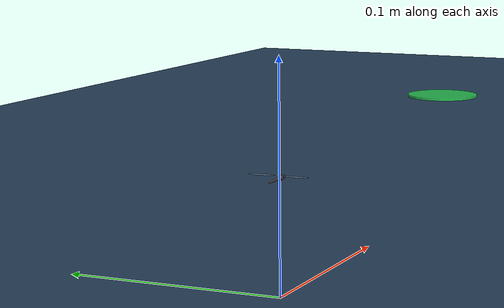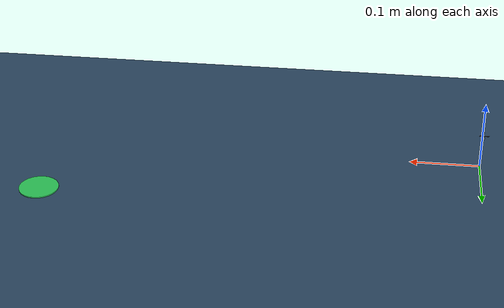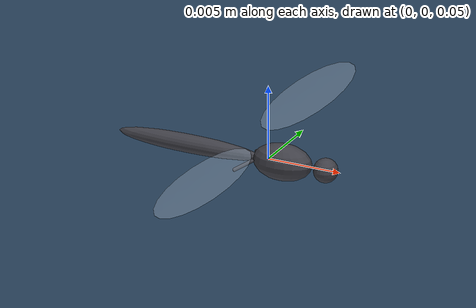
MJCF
<mujoco model="flapping_flyer">

  <option timestep="1e-4" gravity="0 0 -9.81" integrator="implicitfast"/>

  <!-- ===================== VISUALS (menagerie look) ===================== -->
  <visual>
    <headlight diffuse="0.6 0.6 0.6" ambient="0.3 0.3 0.3" specular="0 0 0"/>
    <rgba haze="0.15 0.25 0.35 1"/>
    <global azimuth="120" elevation="-20" offwidth="1280" offheight="960"/>
  </visual>

  <asset>
    <texture type="skybox" builtin="gradient" rgb1="0.3 0.5 0.7" rgb2="0 0 0"
             width="512" height="3072"/>
    <texture type="2d" name="groundplane" builtin="checker" mark="edge"
             rgb1="0.2 0.3 0.4" rgb2="0.1 0.2 0.3" markrgb="0.8 0.8 0.8"
             width="300" height="300"/>
    <material name="groundplane" texture="groundplane" texuniform="true"
              texrepeat="5 5" reflectance="0.2"/>
    <material name="thorax_mat" rgba="0.25 0.25 0.28 1"/>
    <material name="wing_mat"   rgba="0.55 0.62 0.70 0.45"/>
  </asset>

  <default>
    <joint damping="1e-8" armature="0"/>
    <geom density="1200"/>
  </default>

  <worldbody>
    <light pos="0 0 0.3" dir="0 0 -1" directional="true"
           diffuse="0.7 0.7 0.7"/>
    <geom name="floor" type="plane" size="0 0 0.01" material="groundplane"/>
    <geom name="cw0" type="box" pos="0.0000 0.0320 0.0400" size="0.0050 0.0050 0.0400" group="3" rgba="0.62 0.66 0.72 1" contype="0" conaffinity="0"/>
    <geom name="cw1" type="box" pos="0.0070 0.0320 0.0400" size="0.0050 0.0050 0.0400" group="3" rgba="0.62 0.66 0.72 1" contype="0" conaffinity="0"/>
    <geom name="cw2" type="box" pos="0.0140 0.0320 0.0400" size="0.0050 0.0050 0.0400" group="3" rgba="0.62 0.66 0.72 1" contype="0" conaffinity="0"/>
    <geom name="cw3" type="box" pos="0.0210 0.0320 0.0400" size="0.0050 0.0050 0.0400" group="3" rgba="0.62 0.66 0.72 1" contype="0" conaffinity="0"/>
    <geom name="cw4" type="box" pos="0.0280 0.0320 0.0400" size="0.0050 0.0050 0.0400" group="3" rgba="0.62 0.66 0.72 1" contype="0" conaffinity="0"/>
    <geom name="cw5" type="box" pos="0.0350 0.0320 0.0400" size="0.0050 0.0050 0.0400" group="3" rgba="0.62 0.66 0.72 1" contype="0" conaffinity="0"/>
    <geom name="cw6" type="box" pos="0.0420 0.0320 0.0400" size="0.0050 0.0050 0.0400" group="3" rgba="0.62 0.66 0.72 1" contype="0" conaffinity="0"/>
    <geom name="cw7" type="box" pos="0.0490 0.0320 0.0400" size="0.0050 0.0050 0.0400" group="3" rgba="0.62 0.66 0.72 1" contype="0" conaffinity="0"/>
    <geom name="cw8" type="box" pos="0.0560 0.0320 0.0400" size="0.0050 0.0050 0.0400" group="3" rgba="0.62 0.66 0.72 1" contype="0" conaffinity="0"/>
    <geom name="cw9" type="box" pos="0.0630 0.0320 0.0400" size="0.0050 0.0050 0.0400" group="3" rgba="0.62 0.66 0.72 1" contype="0" conaffinity="0"/>
    <geom name="cw10" type="box" pos="0.0700 0.0320 0.0400" size="0.0050 0.0050 0.0400" group="3" rgba="0.62 0.66 0.72 1" contype="0" conaffinity="0"/>
    <geom name="cw11" type="box" pos="0.0770 0.0320 0.0400" size="0.0050 0.0050 0.0400" group="3" rgba="0.62 0.66 0.72 1" contype="0" conaffinity="0"/>
    <geom name="cw12" type="box" pos="0.0840 0.0320 0.0400" size="0.0050 0.0050 0.0400" group="3" rgba="0.62 0.66 0.72 1" contype="0" conaffinity="0"/>
    <geom name="cw13" type="box" pos="0.0910 0.0320 0.0400" size="0.0050 0.0050 0.0400" group="3" rgba="0.62 0.66 0.72 1" contype="0" conaffinity="0"/>
    <geom name="cw14" type="box" pos="0.0980 0.0320 0.0400" size="0.0050 0.0050 0.0400" group="3" rgba="0.62 0.66 0.72 1" contype="0" conaffinity="0"/>
    <geom name="cw15" type="box" pos="0.1050 0.0320 0.0400" size="0.0050 0.0050 0.0400" group="3" rgba="0.62 0.66 0.72 1" contype="0" conaffinity="0"/>
    <geom name="cw16" type="box" pos="0.1120 0.0320 0.0400" size="0.0050 0.0050 0.0400" group="3" rgba="0.62 0.66 0.72 1" contype="0" conaffinity="0"/>
    <geom name="cw17" type="box" pos="0.1190 0.0320 0.0400" size="0.0050 0.0050 0.0400" group="3" rgba="0.62 0.66 0.72 1" contype="0" conaffinity="0"/>
    <geom name="cw18" type="box" pos="0.1260 0.0320 0.0400" size="0.0050 0.0050 0.0400" group="3" rgba="0.62 0.66 0.72 1" contype="0" conaffinity="0"/>
    <geom name="cw19" type="box" pos="0.1330 0.0320 0.0400" size="0.0050 0.0050 0.0400" group="3" rgba="0.62 0.66 0.72 1" contype="0" conaffinity="0"/>
    <geom name="cw20" type="box" pos="0.1330 0.0320 0.0400" size="0.0050 0.0050 0.0400" group="3" rgba="0.62 0.66 0.72 1" contype="0" conaffinity="0"/>
    <geom name="cw21" type="box" pos="0.1330 0.0390 0.0400" size="0.0050 0.0050 0.0400" group="3" rgba="0.62 0.66 0.72 1" contype="0" conaffinity="0"/>
    <geom name="cw22" type="box" pos="0.1330 0.0459 0.0400" size="0.0050 0.0050 0.0400" group="3" rgba="0.62 0.66 0.72 1" contype="0" conaffinity="0"/>
    <geom name="cw23" type="box" pos="0.1330 0.0529 0.0400" size="0.0050 0.0050 0.0400" group="3" rgba="0.62 0.66 0.72 1" contype="0" conaffinity="0"/>
    <geom name="cw24" type="box" pos="0.1330 0.0599 0.0400" size="0.0050 0.0050 0.0400" group="3" rgba="0.62 0.66 0.72 1" contype="0" conaffinity="0"/>
    <geom name="cw25" type="box" pos="0.1330 0.0668 0.0400" size="0.0050 0.0050 0.0400" group="3" rgba="0.62 0.66 0.72 1" contype="0" conaffinity="0"/>
    <geom name="cw26" type="box" pos="0.1330 0.0738 0.0400" size="0.0050 0.0050 0.0400" group="3" rgba="0.62 0.66 0.72 1" contype="0" conaffinity="0"/>
    <geom name="cw27" type="box" pos="0.1330 0.0807 0.0400" size="0.0050 0.0050 0.0400" group="3" rgba="0.62 0.66 0.72 1" contype="0" conaffinity="0"/>
    <geom name="cw28" type="box" pos="0.1330 0.0877 0.0400" size="0.0050 0.0050 0.0400" group="3" rgba="0.62 0.66 0.72 1" contype="0" conaffinity="0"/>
    <geom name="cw29" type="box" pos="0.1330 0.0947 0.0400" size="0.0050 0.0050 0.0400" group="3" rgba="0.62 0.66 0.72 1" contype="0" conaffinity="0"/>
    <geom name="cw30" type="box" pos="0.1330 0.1016 0.0400" size="0.0050 0.0050 0.0400" group="3" rgba="0.62 0.66 0.72 1" contype="0" conaffinity="0"/>
    <geom name="cw31" type="box" pos="0.1330 0.1086 0.0400" size="0.0050 0.0050 0.0400" group="3" rgba="0.62 0.66 0.72 1" contype="0" conaffinity="0"/>
    <geom name="cw32" type="box" pos="0.1330 0.1156 0.0400" size="0.0050 0.0050 0.0400" group="3" rgba="0.62 0.66 0.72 1" contype="0" conaffinity="0"/>
    <geom name="cw33" type="box" pos="0.1330 0.1225 0.0400" size="0.0050 0.0050 0.0400" group="3" rgba="0.62 0.66 0.72 1" contype="0" conaffinity="0"/>
    <geom name="cw34" type="box" pos="0.1330 0.1295 0.0400" size="0.0050 0.0050 0.0400" group="3" rgba="0.62 0.66 0.72 1" contype="0" conaffinity="0"/>
    <geom name="cw35" type="box" pos="0.1330 0.1365 0.0400" size="0.0050 0.0050 0.0400" group="3" rgba="0.62 0.66 0.72 1" contype="0" conaffinity="0"/>
    <geom name="cw36" type="box" pos="0.1330 0.1434 0.0400" size="0.0050 0.0050 0.0400" group="3" rgba="0.62 0.66 0.72 1" contype="0" conaffinity="0"/>
    <geom name="cw37" type="box" pos="0.1330 0.1504 0.0400" size="0.0050 0.0050 0.0400" group="3" rgba="0.62 0.66 0.72 1" contype="0" conaffinity="0"/>
    <geom name="cw38" type="box" pos="0.1330 0.1574 0.0400" size="0.0050 0.0050 0.0400" group="3" rgba="0.62 0.66 0.72 1" contype="0" conaffinity="0"/>
    <geom name="cw39" type="box" pos="0.1330 0.1643 0.0400" size="0.0050 0.0050 0.0400" group="3" rgba="0.62 0.66 0.72 1" contype="0" conaffinity="0"/>
    <geom name="cw40" type="box" pos="0.1330 0.1713 0.0400" size="0.0050 0.0050 0.0400" group="3" rgba="0.62 0.66 0.72 1" contype="0" conaffinity="0"/>
    <geom name="cw41" type="box" pos="0.1330 0.1782 0.0400" size="0.0050 0.0050 0.0400" group="3" rgba="0.62 0.66 0.72 1" contype="0" conaffinity="0"/>
    <geom name="cw42" type="box" pos="0.1330 0.1852 0.0400" size="0.0050 0.0050 0.0400" group="3" rgba="0.62 0.66 0.72 1" contype="0" conaffinity="0"/>
    <geom name="cw43" type="box" pos="0.1330 0.1922 0.0400" size="0.0050 0.0050 0.0400" group="3" rgba="0.62 0.66 0.72 1" contype="0" conaffinity="0"/>
    <geom name="cw44" type="box" pos="0.1330 0.1991 0.0400" size="0.0050 0.0050 0.0400" group="3" rgba="0.62 0.66 0.72 1" contype="0" conaffinity="0"/>
    <geom name="cw45" type="box" pos="0.1330 0.2061 0.0400" size="0.0050 0.0050 0.0400" group="3" rgba="0.62 0.66 0.72 1" contype="0" conaffinity="0"/>
    <geom name="cw46" type="box" pos="0.1330 0.2131 0.0400" size="0.0050 0.0050 0.0400" group="3" rgba="0.62 0.66 0.72 1" contype="0" conaffinity="0"/>
    <geom name="cw47" type="box" pos="0.1330 0.2200 0.0400" size="0.0050 0.0050 0.0400" group="3" rgba="0.62 0.66 0.72 1" contype="0" conaffinity="0"/>
    <geom name="cw48" type="box" pos="0.1330 0.2270 0.0400" size="0.0050 0.0050 0.0400" group="3" rgba="0.62 0.66 0.72 1" contype="0" conaffinity="0"/>
    <geom name="cw49" type="box" pos="0.1330 0.2270 0.0400" size="0.0050 0.0050 0.0400" group="3" rgba="0.62 0.66 0.72 1" contype="0" conaffinity="0"/>
    <geom name="cw50" type="box" pos="0.1398 0.2270 0.0400" size="0.0050 0.0050 0.0400" group="3" rgba="0.62 0.66 0.72 1" contype="0" conaffinity="0"/>
    <geom name="cw51" type="box" pos="0.1466 0.2270 0.0400" size="0.0050 0.0050 0.0400" group="3" rgba="0.62 0.66 0.72 1" contype="0" conaffinity="0"/>
    <geom name="cw52" type="box" pos="0.1535 0.2270 0.0400" size="0.0050 0.0050 0.0400" group="3" rgba="0.62 0.66 0.72 1" contype="0" conaffinity="0"/>
    <geom name="cw53" type="box" pos="0.1603 0.2270 0.0400" size="0.0050 0.0050 0.0400" group="3" rgba="0.62 0.66 0.72 1" contype="0" conaffinity="0"/>
    <geom name="cw54" type="box" pos="0.1671 0.2270 0.0400" size="0.0050 0.0050 0.0400" group="3" rgba="0.62 0.66 0.72 1" contype="0" conaffinity="0"/>
    <geom name="cw55" type="box" pos="0.1739 0.2270 0.0400" size="0.0050 0.0050 0.0400" group="3" rgba="0.62 0.66 0.72 1" contype="0" conaffinity="0"/>
    <geom name="cw56" type="box" pos="0.1807 0.2270 0.0400" size="0.0050 0.0050 0.0400" group="3" rgba="0.62 0.66 0.72 1" contype="0" conaffinity="0"/>
    <geom name="cw57" type="box" pos="0.1876 0.2270 0.0400" size="0.0050 0.0050 0.0400" group="3" rgba="0.62 0.66 0.72 1" contype="0" conaffinity="0"/>
    <geom name="cw58" type="box" pos="0.1944 0.2270 0.0400" size="0.0050 0.0050 0.0400" group="3" rgba="0.62 0.66 0.72 1" contype="0" conaffinity="0"/>
    <geom name="cw59" type="box" pos="0.2012 0.2270 0.0400" size="0.0050 0.0050 0.0400" group="3" rgba="0.62 0.66 0.72 1" contype="0" conaffinity="0"/>
    <geom name="cw60" type="box" pos="0.2080 0.2270 0.0400" size="0.0050 0.0050 0.0400" group="3" rgba="0.62 0.66 0.72 1" contype="0" conaffinity="0"/>
    <geom name="cw61" type="box" pos="0.2149 0.2270 0.0400" size="0.0050 0.0050 0.0400" group="3" rgba="0.62 0.66 0.72 1" contype="0" conaffinity="0"/>
    <geom name="cw62" type="box" pos="0.2217 0.2270 0.0400" size="0.0050 0.0050 0.0400" group="3" rgba="0.62 0.66 0.72 1" contype="0" conaffinity="0"/>
    <geom name="cw63" type="box" pos="0.2285 0.2270 0.0400" size="0.0050 0.0050 0.0400" group="3" rgba="0.62 0.66 0.72 1" contype="0" conaffinity="0"/>
    <geom name="cw64" type="box" pos="0.2353 0.2270 0.0400" size="0.0050 0.0050 0.0400" group="3" rgba="0.62 0.66 0.72 1" contype="0" conaffinity="0"/>
    <geom name="cw65" type="box" pos="0.2421 0.2270 0.0400" size="0.0050 0.0050 0.0400" group="3" rgba="0.62 0.66 0.72 1" contype="0" conaffinity="0"/>
    <geom name="cw66" type="box" pos="0.2490 0.2270 0.0400" size="0.0050 0.0050 0.0400" group="3" rgba="0.62 0.66 0.72 1" contype="0" conaffinity="0"/>
    <geom name="cw67" type="box" pos="0.2558 0.2270 0.0400" size="0.0050 0.0050 0.0400" group="3" rgba="0.62 0.66 0.72 1" contype="0" conaffinity="0"/>
    <geom name="cw68" type="box" pos="0.2626 0.2270 0.0400" size="0.0050 0.0050 0.0400" group="3" rgba="0.62 0.66 0.72 1" contype="0" conaffinity="0"/>
    <geom name="cw69" type="box" pos="0.2694 0.2270 0.0400" size="0.0050 0.0050 0.0400" group="3" rgba="0.62 0.66 0.72 1" contype="0" conaffinity="0"/>
    <geom name="cw70" type="box" pos="0.2762 0.2270 0.0400" size="0.0050 0.0050 0.0400" group="3" rgba="0.62 0.66 0.72 1" contype="0" conaffinity="0"/>
    <geom name="cw71" type="box" pos="0.2831 0.2270 0.0400" size="0.0050 0.0050 0.0400" group="3" rgba="0.62 0.66 0.72 1" contype="0" conaffinity="0"/>
    <geom name="cw72" type="box" pos="0.2899 0.2270 0.0400" size="0.0050 0.0050 0.0400" group="3" rgba="0.62 0.66 0.72 1" contype="0" conaffinity="0"/>
    <geom name="cw73" type="box" pos="0.2967 0.2270 0.0400" size="0.0050 0.0050 0.0400" group="3" rgba="0.62 0.66 0.72 1" contype="0" conaffinity="0"/>
    <geom name="cw74" type="box" pos="0.3035 0.2270 0.0400" size="0.0050 0.0050 0.0400" group="3" rgba="0.62 0.66 0.72 1" contype="0" conaffinity="0"/>
    <geom name="cw75" type="box" pos="0.3103 0.2270 0.0400" size="0.0050 0.0050 0.0400" group="3" rgba="0.62 0.66 0.72 1" contype="0" conaffinity="0"/>
    <geom name="cw76" type="box" pos="0.3172 0.2270 0.0400" size="0.0050 0.0050 0.0400" group="3" rgba="0.62 0.66 0.72 1" contype="0" conaffinity="0"/>
    <geom name="cw77" type="box" pos="0.3240 0.2270 0.0400" size="0.0050 0.0050 0.0400" group="3" rgba="0.62 0.66 0.72 1" contype="0" conaffinity="0"/>
    <geom name="cw78" type="box" pos="0.3308 0.2270 0.0400" size="0.0050 0.0050 0.0400" group="3" rgba="0.62 0.66 0.72 1" contype="0" conaffinity="0"/>
    <geom name="cw79" type="box" pos="0.3376 0.2270 0.0400" size="0.0050 0.0050 0.0400" group="3" rgba="0.62 0.66 0.72 1" contype="0" conaffinity="0"/>
    <geom name="cw80" type="box" pos="0.3445 0.2270 0.0400" size="0.0050 0.0050 0.0400" group="3" rgba="0.62 0.66 0.72 1" contype="0" conaffinity="0"/>
    <geom name="cw81" type="box" pos="0.3513 0.2270 0.0400" size="0.0050 0.0050 0.0400" group="3" rgba="0.62 0.66 0.72 1" contype="0" conaffinity="0"/>
    <geom name="cw82" type="box" pos="0.3513 0.2270 0.0400" size="0.0050 0.0050 0.0400" group="3" rgba="0.62 0.66 0.72 1" contype="0" conaffinity="0"/>
    <geom name="cw83" type="box" pos="0.3572 0.2305 0.0400" size="0.0050 0.0050 0.0400" group="3" rgba="0.62 0.66 0.72 1" contype="0" conaffinity="0"/>
    <geom name="cw84" type="box" pos="0.3630 0.2339 0.0400" size="0.0050 0.0050 0.0400" group="3" rgba="0.62 0.66 0.72 1" contype="0" conaffinity="0"/>
    <geom name="cw85" type="box" pos="0.3689 0.2374 0.0400" size="0.0050 0.0050 0.0400" group="3" rgba="0.62 0.66 0.72 1" contype="0" conaffinity="0"/>
    <geom name="cw86" type="box" pos="0.3748 0.2409 0.0400" size="0.0050 0.0050 0.0400" group="3" rgba="0.62 0.66 0.72 1" contype="0" conaffinity="0"/>
    <geom name="cw87" type="box" pos="0.3807 0.2443 0.0400" size="0.0050 0.0050 0.0400" group="3" rgba="0.62 0.66 0.72 1" contype="0" conaffinity="0"/>
    <geom name="cw88" type="box" pos="0.3866 0.2478 0.0400" size="0.0050 0.0050 0.0400" group="3" rgba="0.62 0.66 0.72 1" contype="0" conaffinity="0"/>
    <geom name="cw89" type="box" pos="0.3925 0.2513 0.0400" size="0.0050 0.0050 0.0400" group="3" rgba="0.62 0.66 0.72 1" contype="0" conaffinity="0"/>
    <geom name="cw90" type="box" pos="0.3983 0.2547 0.0400" size="0.0050 0.0050 0.0400" group="3" rgba="0.62 0.66 0.72 1" contype="0" conaffinity="0"/>
    <geom name="cw91" type="box" pos="0.4042 0.2582 0.0400" size="0.0050 0.0050 0.0400" group="3" rgba="0.62 0.66 0.72 1" contype="0" conaffinity="0"/>
    <geom name="cw92" type="box" pos="0.4101 0.2617 0.0400" size="0.0050 0.0050 0.0400" group="3" rgba="0.62 0.66 0.72 1" contype="0" conaffinity="0"/>
    <geom name="cw93" type="box" pos="0.4160 0.2651 0.0400" size="0.0050 0.0050 0.0400" group="3" rgba="0.62 0.66 0.72 1" contype="0" conaffinity="0"/>
    <geom name="cw94" type="box" pos="0.4219 0.2686 0.0400" size="0.0050 0.0050 0.0400" group="3" rgba="0.62 0.66 0.72 1" contype="0" conaffinity="0"/>
    <geom name="cw95" type="box" pos="0.4278 0.2721 0.0400" size="0.0050 0.0050 0.0400" group="3" rgba="0.62 0.66 0.72 1" contype="0" conaffinity="0"/>
    <geom name="cw96" type="box" pos="0.4337 0.2755 0.0400" size="0.0050 0.0050 0.0400" group="3" rgba="0.62 0.66 0.72 1" contype="0" conaffinity="0"/>
    <geom name="cw97" type="box" pos="0.4395 0.2790 0.0400" size="0.0050 0.0050 0.0400" group="3" rgba="0.62 0.66 0.72 1" contype="0" conaffinity="0"/>
    <geom name="cw98" type="box" pos="0.4454 0.2825 0.0400" size="0.0050 0.0050 0.0400" group="3" rgba="0.62 0.66 0.72 1" contype="0" conaffinity="0"/>
    <geom name="cw99" type="box" pos="0.4513 0.2860 0.0400" size="0.0050 0.0050 0.0400" group="3" rgba="0.62 0.66 0.72 1" contype="0" conaffinity="0"/>
    <geom name="cw100" type="box" pos="0.4572 0.2894 0.0400" size="0.0050 0.0050 0.0400" group="3" rgba="0.62 0.66 0.72 1" contype="0" conaffinity="0"/>
    <geom name="cw101" type="box" pos="0.4631 0.2929 0.0400" size="0.0050 0.0050 0.0400" group="3" rgba="0.62 0.66 0.72 1" contype="0" conaffinity="0"/>
    <geom name="cw102" type="box" pos="0.4690 0.2964 0.0400" size="0.0050 0.0050 0.0400" group="3" rgba="0.62 0.66 0.72 1" contype="0" conaffinity="0"/>
    <geom name="cw103" type="box" pos="0.4748 0.2998 0.0400" size="0.0050 0.0050 0.0400" group="3" rgba="0.62 0.66 0.72 1" contype="0" conaffinity="0"/>
    <geom name="cw104" type="box" pos="0.4807 0.3033 0.0400" size="0.0050 0.0050 0.0400" group="3" rgba="0.62 0.66 0.72 1" contype="0" conaffinity="0"/>
    <geom name="cw105" type="box" pos="0.4866 0.3068 0.0400" size="0.0050 0.0050 0.0400" group="3" rgba="0.62 0.66 0.72 1" contype="0" conaffinity="0"/>
    <geom name="cw106" type="box" pos="0.4925 0.3102 0.0400" size="0.0050 0.0050 0.0400" group="3" rgba="0.62 0.66 0.72 1" contype="0" conaffinity="0"/>
    <geom name="cw107" type="box" pos="0.4984 0.3137 0.0400" size="0.0050 0.0050 0.0400" group="3" rgba="0.62 0.66 0.72 1" contype="0" conaffinity="0"/>
    <geom name="cw108" type="box" pos="0.5043 0.3172 0.0400" size="0.0050 0.0050 0.0400" group="3" rgba="0.62 0.66 0.72 1" contype="0" conaffinity="0"/>
    <geom name="cw109" type="box" pos="0.5102 0.3206 0.0400" size="0.0050 0.0050 0.0400" group="3" rgba="0.62 0.66 0.72 1" contype="0" conaffinity="0"/>
    <geom name="cw110" type="box" pos="0.5160 0.3241 0.0400" size="0.0050 0.0050 0.0400" group="3" rgba="0.62 0.66 0.72 1" contype="0" conaffinity="0"/>
    <geom name="cw111" type="box" pos="0.5219 0.3276 0.0400" size="0.0050 0.0050 0.0400" group="3" rgba="0.62 0.66 0.72 1" contype="0" conaffinity="0"/>
    <geom name="cw112" type="box" pos="0.5278 0.3310 0.0400" size="0.0050 0.0050 0.0400" group="3" rgba="0.62 0.66 0.72 1" contype="0" conaffinity="0"/>
    <geom name="cw113" type="box" pos="0.5337 0.3345 0.0400" size="0.0050 0.0050 0.0400" group="3" rgba="0.62 0.66 0.72 1" contype="0" conaffinity="0"/>
    <geom name="cw114" type="box" pos="0.5396 0.3380 0.0400" size="0.0050 0.0050 0.0400" group="3" rgba="0.62 0.66 0.72 1" contype="0" conaffinity="0"/>
    <geom name="cw115" type="box" pos="0.5396 0.3380 0.0400" size="0.0050 0.0050 0.0400" group="3" rgba="0.62 0.66 0.72 1" contype="0" conaffinity="0"/>
    <geom name="cw116" type="box" pos="0.5430 0.3320 0.0400" size="0.0050 0.0050 0.0400" group="3" rgba="0.62 0.66 0.72 1" contype="0" conaffinity="0"/>
    <geom name="cw117" type="box" pos="0.5464 0.3261 0.0400" size="0.0050 0.0050 0.0400" group="3" rgba="0.62 0.66 0.72 1" contype="0" conaffinity="0"/>
    <geom name="cw118" type="box" pos="0.5499 0.3202 0.0400" size="0.0050 0.0050 0.0400" group="3" rgba="0.62 0.66 0.72 1" contype="0" conaffinity="0"/>
    <geom name="cw119" type="box" pos="0.5533 0.3142 0.0400" size="0.0050 0.0050 0.0400" group="3" rgba="0.62 0.66 0.72 1" contype="0" conaffinity="0"/>
    <geom name="cw120" type="box" pos="0.5567 0.3083 0.0400" size="0.0050 0.0050 0.0400" group="3" rgba="0.62 0.66 0.72 1" contype="0" conaffinity="0"/>
    <geom name="cw121" type="box" pos="0.5601 0.3024 0.0400" size="0.0050 0.0050 0.0400" group="3" rgba="0.62 0.66 0.72 1" contype="0" conaffinity="0"/>
    <geom name="cw122" type="box" pos="0.5635 0.2964 0.0400" size="0.0050 0.0050 0.0400" group="3" rgba="0.62 0.66 0.72 1" contype="0" conaffinity="0"/>
    <geom name="cw123" type="box" pos="0.5670 0.2905 0.0400" size="0.0050 0.0050 0.0400" group="3" rgba="0.62 0.66 0.72 1" contype="0" conaffinity="0"/>
    <geom name="cw124" type="box" pos="0.5704 0.2846 0.0400" size="0.0050 0.0050 0.0400" group="3" rgba="0.62 0.66 0.72 1" contype="0" conaffinity="0"/>
    <geom name="cw125" type="box" pos="0.5738 0.2786 0.0400" size="0.0050 0.0050 0.0400" group="3" rgba="0.62 0.66 0.72 1" contype="0" conaffinity="0"/>
    <geom name="cw126" type="box" pos="0.5772 0.2727 0.0400" size="0.0050 0.0050 0.0400" group="3" rgba="0.62 0.66 0.72 1" contype="0" conaffinity="0"/>
    <geom name="cw127" type="box" pos="0.5807 0.2667 0.0400" size="0.0050 0.0050 0.0400" group="3" rgba="0.62 0.66 0.72 1" contype="0" conaffinity="0"/>
    <geom name="cw128" type="box" pos="0.5841 0.2608 0.0400" size="0.0050 0.0050 0.0400" group="3" rgba="0.62 0.66 0.72 1" contype="0" conaffinity="0"/>
    <geom name="cw129" type="box" pos="0.5875 0.2549 0.0400" size="0.0050 0.0050 0.0400" group="3" rgba="0.62 0.66 0.72 1" contype="0" conaffinity="0"/>
    <geom name="cw130" type="box" pos="0.5909 0.2489 0.0400" size="0.0050 0.0050 0.0400" group="3" rgba="0.62 0.66 0.72 1" contype="0" conaffinity="0"/>
    <geom name="cw131" type="box" pos="0.5944 0.2430 0.0400" size="0.0050 0.0050 0.0400" group="3" rgba="0.62 0.66 0.72 1" contype="0" conaffinity="0"/>
    <geom name="cw132" type="box" pos="0.5978 0.2371 0.0400" size="0.0050 0.0050 0.0400" group="3" rgba="0.62 0.66 0.72 1" contype="0" conaffinity="0"/>
    <geom name="cw133" type="box" pos="0.6012 0.2311 0.0400" size="0.0050 0.0050 0.0400" group="3" rgba="0.62 0.66 0.72 1" contype="0" conaffinity="0"/>
    <geom name="cw134" type="box" pos="0.6046 0.2252 0.0400" size="0.0050 0.0050 0.0400" group="3" rgba="0.62 0.66 0.72 1" contype="0" conaffinity="0"/>
    <geom name="cw135" type="box" pos="0.6081 0.2193 0.0400" size="0.0050 0.0050 0.0400" group="3" rgba="0.62 0.66 0.72 1" contype="0" conaffinity="0"/>
    <geom name="cw136" type="box" pos="0.6115 0.2133 0.0400" size="0.0050 0.0050 0.0400" group="3" rgba="0.62 0.66 0.72 1" contype="0" conaffinity="0"/>
    <geom name="cw137" type="box" pos="0.6149 0.2074 0.0400" size="0.0050 0.0050 0.0400" group="3" rgba="0.62 0.66 0.72 1" contype="0" conaffinity="0"/>
    <geom name="cw138" type="box" pos="0.6183 0.2015 0.0400" size="0.0050 0.0050 0.0400" group="3" rgba="0.62 0.66 0.72 1" contype="0" conaffinity="0"/>
    <geom name="cw139" type="box" pos="0.6218 0.1955 0.0400" size="0.0050 0.0050 0.0400" group="3" rgba="0.62 0.66 0.72 1" contype="0" conaffinity="0"/>
    <geom name="cw140" type="box" pos="0.6252 0.1896 0.0400" size="0.0050 0.0050 0.0400" group="3" rgba="0.62 0.66 0.72 1" contype="0" conaffinity="0"/>
    <geom name="cw141" type="box" pos="0.6286 0.1837 0.0400" size="0.0050 0.0050 0.0400" group="3" rgba="0.62 0.66 0.72 1" contype="0" conaffinity="0"/>
    <geom name="cw142" type="box" pos="0.6320 0.1777 0.0400" size="0.0050 0.0050 0.0400" group="3" rgba="0.62 0.66 0.72 1" contype="0" conaffinity="0"/>
    <geom name="cw143" type="box" pos="0.6354 0.1718 0.0400" size="0.0050 0.0050 0.0400" group="3" rgba="0.62 0.66 0.72 1" contype="0" conaffinity="0"/>
    <geom name="cw144" type="box" pos="0.6389 0.1659 0.0400" size="0.0050 0.0050 0.0400" group="3" rgba="0.62 0.66 0.72 1" contype="0" conaffinity="0"/>
    <geom name="cw145" type="box" pos="0.6423 0.1599 0.0400" size="0.0050 0.0050 0.0400" group="3" rgba="0.62 0.66 0.72 1" contype="0" conaffinity="0"/>
    <geom name="cw146" type="box" pos="0.6457 0.1540 0.0400" size="0.0050 0.0050 0.0400" group="3" rgba="0.62 0.66 0.72 1" contype="0" conaffinity="0"/>
    <geom name="cw147" type="box" pos="0.0000 -0.0320 0.0400" size="0.0050 0.0050 0.0400" group="3" rgba="0.62 0.66 0.72 1" contype="0" conaffinity="0"/>
    <geom name="cw148" type="box" pos="0.0068 -0.0320 0.0400" size="0.0050 0.0050 0.0400" group="3" rgba="0.62 0.66 0.72 1" contype="0" conaffinity="0"/>
    <geom name="cw149" type="box" pos="0.0136 -0.0320 0.0400" size="0.0050 0.0050 0.0400" group="3" rgba="0.62 0.66 0.72 1" contype="0" conaffinity="0"/>
    <geom name="cw150" type="box" pos="0.0204 -0.0320 0.0400" size="0.0050 0.0050 0.0400" group="3" rgba="0.62 0.66 0.72 1" contype="0" conaffinity="0"/>
    <geom name="cw151" type="box" pos="0.0272 -0.0320 0.0400" size="0.0050 0.0050 0.0400" group="3" rgba="0.62 0.66 0.72 1" contype="0" conaffinity="0"/>
    <geom name="cw152" type="box" pos="0.0340 -0.0320 0.0400" size="0.0050 0.0050 0.0400" group="3" rgba="0.62 0.66 0.72 1" contype="0" conaffinity="0"/>
    <geom name="cw153" type="box" pos="0.0408 -0.0320 0.0400" size="0.0050 0.0050 0.0400" group="3" rgba="0.62 0.66 0.72 1" contype="0" conaffinity="0"/>
    <geom name="cw154" type="box" pos="0.0476 -0.0320 0.0400" size="0.0050 0.0050 0.0400" group="3" rgba="0.62 0.66 0.72 1" contype="0" conaffinity="0"/>
    <geom name="cw155" type="box" pos="0.0543 -0.0320 0.0400" size="0.0050 0.0050 0.0400" group="3" rgba="0.62 0.66 0.72 1" contype="0" conaffinity="0"/>
    <geom name="cw156" type="box" pos="0.0611 -0.0320 0.0400" size="0.0050 0.0050 0.0400" group="3" rgba="0.62 0.66 0.72 1" contype="0" conaffinity="0"/>
    <geom name="cw157" type="box" pos="0.0679 -0.0320 0.0400" size="0.0050 0.0050 0.0400" group="3" rgba="0.62 0.66 0.72 1" contype="0" conaffinity="0"/>
    <geom name="cw158" type="box" pos="0.0747 -0.0320 0.0400" size="0.0050 0.0050 0.0400" group="3" rgba="0.62 0.66 0.72 1" contype="0" conaffinity="0"/>
    <geom name="cw159" type="box" pos="0.0815 -0.0320 0.0400" size="0.0050 0.0050 0.0400" group="3" rgba="0.62 0.66 0.72 1" contype="0" conaffinity="0"/>
    <geom name="cw160" type="box" pos="0.0883 -0.0320 0.0400" size="0.0050 0.0050 0.0400" group="3" rgba="0.62 0.66 0.72 1" contype="0" conaffinity="0"/>
    <geom name="cw161" type="box" pos="0.0951 -0.0320 0.0400" size="0.0050 0.0050 0.0400" group="3" rgba="0.62 0.66 0.72 1" contype="0" conaffinity="0"/>
    <geom name="cw162" type="box" pos="0.1019 -0.0320 0.0400" size="0.0050 0.0050 0.0400" group="3" rgba="0.62 0.66 0.72 1" contype="0" conaffinity="0"/>
    <geom name="cw163" type="box" pos="0.1087 -0.0320 0.0400" size="0.0050 0.0050 0.0400" group="3" rgba="0.62 0.66 0.72 1" contype="0" conaffinity="0"/>
    <geom name="cw164" type="box" pos="0.1155 -0.0320 0.0400" size="0.0050 0.0050 0.0400" group="3" rgba="0.62 0.66 0.72 1" contype="0" conaffinity="0"/>
    <geom name="cw165" type="box" pos="0.1223 -0.0320 0.0400" size="0.0050 0.0050 0.0400" group="3" rgba="0.62 0.66 0.72 1" contype="0" conaffinity="0"/>
    <geom name="cw166" type="box" pos="0.1291 -0.0320 0.0400" size="0.0050 0.0050 0.0400" group="3" rgba="0.62 0.66 0.72 1" contype="0" conaffinity="0"/>
    <geom name="cw167" type="box" pos="0.1359 -0.0320 0.0400" size="0.0050 0.0050 0.0400" group="3" rgba="0.62 0.66 0.72 1" contype="0" conaffinity="0"/>
    <geom name="cw168" type="box" pos="0.1427 -0.0320 0.0400" size="0.0050 0.0050 0.0400" group="3" rgba="0.62 0.66 0.72 1" contype="0" conaffinity="0"/>
    <geom name="cw169" type="box" pos="0.1494 -0.0320 0.0400" size="0.0050 0.0050 0.0400" group="3" rgba="0.62 0.66 0.72 1" contype="0" conaffinity="0"/>
    <geom name="cw170" type="box" pos="0.1562 -0.0320 0.0400" size="0.0050 0.0050 0.0400" group="3" rgba="0.62 0.66 0.72 1" contype="0" conaffinity="0"/>
    <geom name="cw171" type="box" pos="0.1630 -0.0320 0.0400" size="0.0050 0.0050 0.0400" group="3" rgba="0.62 0.66 0.72 1" contype="0" conaffinity="0"/>
    <geom name="cw172" type="box" pos="0.1698 -0.0320 0.0400" size="0.0050 0.0050 0.0400" group="3" rgba="0.62 0.66 0.72 1" contype="0" conaffinity="0"/>
    <geom name="cw173" type="box" pos="0.1766 -0.0320 0.0400" size="0.0050 0.0050 0.0400" group="3" rgba="0.62 0.66 0.72 1" contype="0" conaffinity="0"/>
    <geom name="cw174" type="box" pos="0.1834 -0.0320 0.0400" size="0.0050 0.0050 0.0400" group="3" rgba="0.62 0.66 0.72 1" contype="0" conaffinity="0"/>
    <geom name="cw175" type="box" pos="0.1902 -0.0320 0.0400" size="0.0050 0.0050 0.0400" group="3" rgba="0.62 0.66 0.72 1" contype="0" conaffinity="0"/>
    <geom name="cw176" type="box" pos="0.1970 -0.0320 0.0400" size="0.0050 0.0050 0.0400" group="3" rgba="0.62 0.66 0.72 1" contype="0" conaffinity="0"/>
    <geom name="cw177" type="box" pos="0.1970 -0.0320 0.0400" size="0.0050 0.0050 0.0400" group="3" rgba="0.62 0.66 0.72 1" contype="0" conaffinity="0"/>
    <geom name="cw178" type="box" pos="0.1970 -0.0250 0.0400" size="0.0050 0.0050 0.0400" group="3" rgba="0.62 0.66 0.72 1" contype="0" conaffinity="0"/>
    <geom name="cw179" type="box" pos="0.1970 -0.0181 0.0400" size="0.0050 0.0050 0.0400" group="3" rgba="0.62 0.66 0.72 1" contype="0" conaffinity="0"/>
    <geom name="cw180" type="box" pos="0.1970 -0.0111 0.0400" size="0.0050 0.0050 0.0400" group="3" rgba="0.62 0.66 0.72 1" contype="0" conaffinity="0"/>
    <geom name="cw181" type="box" pos="0.1970 -0.0041 0.0400" size="0.0050 0.0050 0.0400" group="3" rgba="0.62 0.66 0.72 1" contype="0" conaffinity="0"/>
    <geom name="cw182" type="box" pos="0.1970 0.0028 0.0400" size="0.0050 0.0050 0.0400" group="3" rgba="0.62 0.66 0.72 1" contype="0" conaffinity="0"/>
    <geom name="cw183" type="box" pos="0.1970 0.0098 0.0400" size="0.0050 0.0050 0.0400" group="3" rgba="0.62 0.66 0.72 1" contype="0" conaffinity="0"/>
    <geom name="cw184" type="box" pos="0.1970 0.0168 0.0400" size="0.0050 0.0050 0.0400" group="3" rgba="0.62 0.66 0.72 1" contype="0" conaffinity="0"/>
    <geom name="cw185" type="box" pos="0.1970 0.0237 0.0400" size="0.0050 0.0050 0.0400" group="3" rgba="0.62 0.66 0.72 1" contype="0" conaffinity="0"/>
    <geom name="cw186" type="box" pos="0.1970 0.0307 0.0400" size="0.0050 0.0050 0.0400" group="3" rgba="0.62 0.66 0.72 1" contype="0" conaffinity="0"/>
    <geom name="cw187" type="box" pos="0.1970 0.0376 0.0400" size="0.0050 0.0050 0.0400" group="3" rgba="0.62 0.66 0.72 1" contype="0" conaffinity="0"/>
    <geom name="cw188" type="box" pos="0.1970 0.0446 0.0400" size="0.0050 0.0050 0.0400" group="3" rgba="0.62 0.66 0.72 1" contype="0" conaffinity="0"/>
    <geom name="cw189" type="box" pos="0.1970 0.0516 0.0400" size="0.0050 0.0050 0.0400" group="3" rgba="0.62 0.66 0.72 1" contype="0" conaffinity="0"/>
    <geom name="cw190" type="box" pos="0.1970 0.0585 0.0400" size="0.0050 0.0050 0.0400" group="3" rgba="0.62 0.66 0.72 1" contype="0" conaffinity="0"/>
    <geom name="cw191" type="box" pos="0.1970 0.0655 0.0400" size="0.0050 0.0050 0.0400" group="3" rgba="0.62 0.66 0.72 1" contype="0" conaffinity="0"/>
    <geom name="cw192" type="box" pos="0.1970 0.0725 0.0400" size="0.0050 0.0050 0.0400" group="3" rgba="0.62 0.66 0.72 1" contype="0" conaffinity="0"/>
    <geom name="cw193" type="box" pos="0.1970 0.0794 0.0400" size="0.0050 0.0050 0.0400" group="3" rgba="0.62 0.66 0.72 1" contype="0" conaffinity="0"/>
    <geom name="cw194" type="box" pos="0.1970 0.0864 0.0400" size="0.0050 0.0050 0.0400" group="3" rgba="0.62 0.66 0.72 1" contype="0" conaffinity="0"/>
    <geom name="cw195" type="box" pos="0.1970 0.0934 0.0400" size="0.0050 0.0050 0.0400" group="3" rgba="0.62 0.66 0.72 1" contype="0" conaffinity="0"/>
    <geom name="cw196" type="box" pos="0.1970 0.1003 0.0400" size="0.0050 0.0050 0.0400" group="3" rgba="0.62 0.66 0.72 1" contype="0" conaffinity="0"/>
    <geom name="cw197" type="box" pos="0.1970 0.1073 0.0400" size="0.0050 0.0050 0.0400" group="3" rgba="0.62 0.66 0.72 1" contype="0" conaffinity="0"/>
    <geom name="cw198" type="box" pos="0.1970 0.1142 0.0400" size="0.0050 0.0050 0.0400" group="3" rgba="0.62 0.66 0.72 1" contype="0" conaffinity="0"/>
    <geom name="cw199" type="box" pos="0.1970 0.1212 0.0400" size="0.0050 0.0050 0.0400" group="3" rgba="0.62 0.66 0.72 1" contype="0" conaffinity="0"/>
    <geom name="cw200" type="box" pos="0.1970 0.1282 0.0400" size="0.0050 0.0050 0.0400" group="3" rgba="0.62 0.66 0.72 1" contype="0" conaffinity="0"/>
    <geom name="cw201" type="box" pos="0.1970 0.1351 0.0400" size="0.0050 0.0050 0.0400" group="3" rgba="0.62 0.66 0.72 1" contype="0" conaffinity="0"/>
    <geom name="cw202" type="box" pos="0.1970 0.1421 0.0400" size="0.0050 0.0050 0.0400" group="3" rgba="0.62 0.66 0.72 1" contype="0" conaffinity="0"/>
    <geom name="cw203" type="box" pos="0.1970 0.1491 0.0400" size="0.0050 0.0050 0.0400" group="3" rgba="0.62 0.66 0.72 1" contype="0" conaffinity="0"/>
    <geom name="cw204" type="box" pos="0.1970 0.1560 0.0400" size="0.0050 0.0050 0.0400" group="3" rgba="0.62 0.66 0.72 1" contype="0" conaffinity="0"/>
    <geom name="cw205" type="box" pos="0.1970 0.1630 0.0400" size="0.0050 0.0050 0.0400" group="3" rgba="0.62 0.66 0.72 1" contype="0" conaffinity="0"/>
    <geom name="cw206" type="box" pos="0.1970 0.1630 0.0400" size="0.0050 0.0050 0.0400" group="3" rgba="0.62 0.66 0.72 1" contype="0" conaffinity="0"/>
    <geom name="cw207" type="box" pos="0.2039 0.1630 0.0400" size="0.0050 0.0050 0.0400" group="3" rgba="0.62 0.66 0.72 1" contype="0" conaffinity="0"/>
    <geom name="cw208" type="box" pos="0.2107 0.1630 0.0400" size="0.0050 0.0050 0.0400" group="3" rgba="0.62 0.66 0.72 1" contype="0" conaffinity="0"/>
    <geom name="cw209" type="box" pos="0.2176 0.1630 0.0400" size="0.0050 0.0050 0.0400" group="3" rgba="0.62 0.66 0.72 1" contype="0" conaffinity="0"/>
    <geom name="cw210" type="box" pos="0.2245 0.1630 0.0400" size="0.0050 0.0050 0.0400" group="3" rgba="0.62 0.66 0.72 1" contype="0" conaffinity="0"/>
    <geom name="cw211" type="box" pos="0.2313 0.1630 0.0400" size="0.0050 0.0050 0.0400" group="3" rgba="0.62 0.66 0.72 1" contype="0" conaffinity="0"/>
    <geom name="cw212" type="box" pos="0.2382 0.1630 0.0400" size="0.0050 0.0050 0.0400" group="3" rgba="0.62 0.66 0.72 1" contype="0" conaffinity="0"/>
    <geom name="cw213" type="box" pos="0.2451 0.1630 0.0400" size="0.0050 0.0050 0.0400" group="3" rgba="0.62 0.66 0.72 1" contype="0" conaffinity="0"/>
    <geom name="cw214" type="box" pos="0.2520 0.1630 0.0400" size="0.0050 0.0050 0.0400" group="3" rgba="0.62 0.66 0.72 1" contype="0" conaffinity="0"/>
    <geom name="cw215" type="box" pos="0.2588 0.1630 0.0400" size="0.0050 0.0050 0.0400" group="3" rgba="0.62 0.66 0.72 1" contype="0" conaffinity="0"/>
    <geom name="cw216" type="box" pos="0.2657 0.1630 0.0400" size="0.0050 0.0050 0.0400" group="3" rgba="0.62 0.66 0.72 1" contype="0" conaffinity="0"/>
    <geom name="cw217" type="box" pos="0.2726 0.1630 0.0400" size="0.0050 0.0050 0.0400" group="3" rgba="0.62 0.66 0.72 1" contype="0" conaffinity="0"/>
    <geom name="cw218" type="box" pos="0.2794 0.1630 0.0400" size="0.0050 0.0050 0.0400" group="3" rgba="0.62 0.66 0.72 1" contype="0" conaffinity="0"/>
    <geom name="cw219" type="box" pos="0.2863 0.1630 0.0400" size="0.0050 0.0050 0.0400" group="3" rgba="0.62 0.66 0.72 1" contype="0" conaffinity="0"/>
    <geom name="cw220" type="box" pos="0.2932 0.1630 0.0400" size="0.0050 0.0050 0.0400" group="3" rgba="0.62 0.66 0.72 1" contype="0" conaffinity="0"/>
    <geom name="cw221" type="box" pos="0.3000 0.1630 0.0400" size="0.0050 0.0050 0.0400" group="3" rgba="0.62 0.66 0.72 1" contype="0" conaffinity="0"/>
    <geom name="cw222" type="box" pos="0.3069 0.1630 0.0400" size="0.0050 0.0050 0.0400" group="3" rgba="0.62 0.66 0.72 1" contype="0" conaffinity="0"/>
    <geom name="cw223" type="box" pos="0.3138 0.1630 0.0400" size="0.0050 0.0050 0.0400" group="3" rgba="0.62 0.66 0.72 1" contype="0" conaffinity="0"/>
    <geom name="cw224" type="box" pos="0.3206 0.1630 0.0400" size="0.0050 0.0050 0.0400" group="3" rgba="0.62 0.66 0.72 1" contype="0" conaffinity="0"/>
    <geom name="cw225" type="box" pos="0.3275 0.1630 0.0400" size="0.0050 0.0050 0.0400" group="3" rgba="0.62 0.66 0.72 1" contype="0" conaffinity="0"/>
    <geom name="cw226" type="box" pos="0.3344 0.1630 0.0400" size="0.0050 0.0050 0.0400" group="3" rgba="0.62 0.66 0.72 1" contype="0" conaffinity="0"/>
    <geom name="cw227" type="box" pos="0.3413 0.1630 0.0400" size="0.0050 0.0050 0.0400" group="3" rgba="0.62 0.66 0.72 1" contype="0" conaffinity="0"/>
    <geom name="cw228" type="box" pos="0.3481 0.1630 0.0400" size="0.0050 0.0050 0.0400" group="3" rgba="0.62 0.66 0.72 1" contype="0" conaffinity="0"/>
    <geom name="cw229" type="box" pos="0.3550 0.1630 0.0400" size="0.0050 0.0050 0.0400" group="3" rgba="0.62 0.66 0.72 1" contype="0" conaffinity="0"/>
    <geom name="cw230" type="box" pos="0.3619 0.1630 0.0400" size="0.0050 0.0050 0.0400" group="3" rgba="0.62 0.66 0.72 1" contype="0" conaffinity="0"/>
    <geom name="cw231" type="box" pos="0.3687 0.1630 0.0400" size="0.0050 0.0050 0.0400" group="3" rgba="0.62 0.66 0.72 1" contype="0" conaffinity="0"/>
    <geom name="cw232" type="box" pos="0.3687 0.1630 0.0400" size="0.0050 0.0050 0.0400" group="3" rgba="0.62 0.66 0.72 1" contype="0" conaffinity="0"/>
    <geom name="cw233" type="box" pos="0.3746 0.1665 0.0400" size="0.0050 0.0050 0.0400" group="3" rgba="0.62 0.66 0.72 1" contype="0" conaffinity="0"/>
    <geom name="cw234" type="box" pos="0.3805 0.1700 0.0400" size="0.0050 0.0050 0.0400" group="3" rgba="0.62 0.66 0.72 1" contype="0" conaffinity="0"/>
    <geom name="cw235" type="box" pos="0.3865 0.1734 0.0400" size="0.0050 0.0050 0.0400" group="3" rgba="0.62 0.66 0.72 1" contype="0" conaffinity="0"/>
    <geom name="cw236" type="box" pos="0.3924 0.1769 0.0400" size="0.0050 0.0050 0.0400" group="3" rgba="0.62 0.66 0.72 1" contype="0" conaffinity="0"/>
    <geom name="cw237" type="box" pos="0.3983 0.1804 0.0400" size="0.0050 0.0050 0.0400" group="3" rgba="0.62 0.66 0.72 1" contype="0" conaffinity="0"/>
    <geom name="cw238" type="box" pos="0.4042 0.1839 0.0400" size="0.0050 0.0050 0.0400" group="3" rgba="0.62 0.66 0.72 1" contype="0" conaffinity="0"/>
    <geom name="cw239" type="box" pos="0.4101 0.1874 0.0400" size="0.0050 0.0050 0.0400" group="3" rgba="0.62 0.66 0.72 1" contype="0" conaffinity="0"/>
    <geom name="cw240" type="box" pos="0.4160 0.1909 0.0400" size="0.0050 0.0050 0.0400" group="3" rgba="0.62 0.66 0.72 1" contype="0" conaffinity="0"/>
    <geom name="cw241" type="box" pos="0.4219 0.1943 0.0400" size="0.0050 0.0050 0.0400" group="3" rgba="0.62 0.66 0.72 1" contype="0" conaffinity="0"/>
    <geom name="cw242" type="box" pos="0.4278 0.1978 0.0400" size="0.0050 0.0050 0.0400" group="3" rgba="0.62 0.66 0.72 1" contype="0" conaffinity="0"/>
    <geom name="cw243" type="box" pos="0.4337 0.2013 0.0400" size="0.0050 0.0050 0.0400" group="3" rgba="0.62 0.66 0.72 1" contype="0" conaffinity="0"/>
    <geom name="cw244" type="box" pos="0.4396 0.2048 0.0400" size="0.0050 0.0050 0.0400" group="3" rgba="0.62 0.66 0.72 1" contype="0" conaffinity="0"/>
    <geom name="cw245" type="box" pos="0.4455 0.2083 0.0400" size="0.0050 0.0050 0.0400" group="3" rgba="0.62 0.66 0.72 1" contype="0" conaffinity="0"/>
    <geom name="cw246" type="box" pos="0.4514 0.2117 0.0400" size="0.0050 0.0050 0.0400" group="3" rgba="0.62 0.66 0.72 1" contype="0" conaffinity="0"/>
    <geom name="cw247" type="box" pos="0.4573 0.2152 0.0400" size="0.0050 0.0050 0.0400" group="3" rgba="0.62 0.66 0.72 1" contype="0" conaffinity="0"/>
    <geom name="cw248" type="box" pos="0.4633 0.2187 0.0400" size="0.0050 0.0050 0.0400" group="3" rgba="0.62 0.66 0.72 1" contype="0" conaffinity="0"/>
    <geom name="cw249" type="box" pos="0.4692 0.2222 0.0400" size="0.0050 0.0050 0.0400" group="3" rgba="0.62 0.66 0.72 1" contype="0" conaffinity="0"/>
    <geom name="cw250" type="box" pos="0.4751 0.2257 0.0400" size="0.0050 0.0050 0.0400" group="3" rgba="0.62 0.66 0.72 1" contype="0" conaffinity="0"/>
    <geom name="cw251" type="box" pos="0.4810 0.2291 0.0400" size="0.0050 0.0050 0.0400" group="3" rgba="0.62 0.66 0.72 1" contype="0" conaffinity="0"/>
    <geom name="cw252" type="box" pos="0.4869 0.2326 0.0400" size="0.0050 0.0050 0.0400" group="3" rgba="0.62 0.66 0.72 1" contype="0" conaffinity="0"/>
    <geom name="cw253" type="box" pos="0.4928 0.2361 0.0400" size="0.0050 0.0050 0.0400" group="3" rgba="0.62 0.66 0.72 1" contype="0" conaffinity="0"/>
    <geom name="cw254" type="box" pos="0.4987 0.2396 0.0400" size="0.0050 0.0050 0.0400" group="3" rgba="0.62 0.66 0.72 1" contype="0" conaffinity="0"/>
    <geom name="cw255" type="box" pos="0.5046 0.2431 0.0400" size="0.0050 0.0050 0.0400" group="3" rgba="0.62 0.66 0.72 1" contype="0" conaffinity="0"/>
    <geom name="cw256" type="box" pos="0.5105 0.2466 0.0400" size="0.0050 0.0050 0.0400" group="3" rgba="0.62 0.66 0.72 1" contype="0" conaffinity="0"/>
    <geom name="cw257" type="box" pos="0.5164 0.2500 0.0400" size="0.0050 0.0050 0.0400" group="3" rgba="0.62 0.66 0.72 1" contype="0" conaffinity="0"/>
    <geom name="cw258" type="box" pos="0.5164 0.2500 0.0400" size="0.0050 0.0050 0.0400" group="3" rgba="0.62 0.66 0.72 1" contype="0" conaffinity="0"/>
    <geom name="cw259" type="box" pos="0.5198 0.2442 0.0400" size="0.0050 0.0050 0.0400" group="3" rgba="0.62 0.66 0.72 1" contype="0" conaffinity="0"/>
    <geom name="cw260" type="box" pos="0.5231 0.2384 0.0400" size="0.0050 0.0050 0.0400" group="3" rgba="0.62 0.66 0.72 1" contype="0" conaffinity="0"/>
    <geom name="cw261" type="box" pos="0.5265 0.2326 0.0400" size="0.0050 0.0050 0.0400" group="3" rgba="0.62 0.66 0.72 1" contype="0" conaffinity="0"/>
    <geom name="cw262" type="box" pos="0.5299 0.2268 0.0400" size="0.0050 0.0050 0.0400" group="3" rgba="0.62 0.66 0.72 1" contype="0" conaffinity="0"/>
    <geom name="cw263" type="box" pos="0.5332 0.2209 0.0400" size="0.0050 0.0050 0.0400" group="3" rgba="0.62 0.66 0.72 1" contype="0" conaffinity="0"/>
    <geom name="cw264" type="box" pos="0.5366 0.2151 0.0400" size="0.0050 0.0050 0.0400" group="3" rgba="0.62 0.66 0.72 1" contype="0" conaffinity="0"/>
    <geom name="cw265" type="box" pos="0.5399 0.2093 0.0400" size="0.0050 0.0050 0.0400" group="3" rgba="0.62 0.66 0.72 1" contype="0" conaffinity="0"/>
    <geom name="cw266" type="box" pos="0.5433 0.2035 0.0400" size="0.0050 0.0050 0.0400" group="3" rgba="0.62 0.66 0.72 1" contype="0" conaffinity="0"/>
    <geom name="cw267" type="box" pos="0.5466 0.1977 0.0400" size="0.0050 0.0050 0.0400" group="3" rgba="0.62 0.66 0.72 1" contype="0" conaffinity="0"/>
    <geom name="cw268" type="box" pos="0.5500 0.1918 0.0400" size="0.0050 0.0050 0.0400" group="3" rgba="0.62 0.66 0.72 1" contype="0" conaffinity="0"/>
    <geom name="cw269" type="box" pos="0.5534 0.1860 0.0400" size="0.0050 0.0050 0.0400" group="3" rgba="0.62 0.66 0.72 1" contype="0" conaffinity="0"/>
    <geom name="cw270" type="box" pos="0.5567 0.1802 0.0400" size="0.0050 0.0050 0.0400" group="3" rgba="0.62 0.66 0.72 1" contype="0" conaffinity="0"/>
    <geom name="cw271" type="box" pos="0.5601 0.1744 0.0400" size="0.0050 0.0050 0.0400" group="3" rgba="0.62 0.66 0.72 1" contype="0" conaffinity="0"/>
    <geom name="cw272" type="box" pos="0.5634 0.1686 0.0400" size="0.0050 0.0050 0.0400" group="3" rgba="0.62 0.66 0.72 1" contype="0" conaffinity="0"/>
    <geom name="cw273" type="box" pos="0.5668 0.1627 0.0400" size="0.0050 0.0050 0.0400" group="3" rgba="0.62 0.66 0.72 1" contype="0" conaffinity="0"/>
    <geom name="cw274" type="box" pos="0.5701 0.1569 0.0400" size="0.0050 0.0050 0.0400" group="3" rgba="0.62 0.66 0.72 1" contype="0" conaffinity="0"/>
    <geom name="cw275" type="box" pos="0.5735 0.1511 0.0400" size="0.0050 0.0050 0.0400" group="3" rgba="0.62 0.66 0.72 1" contype="0" conaffinity="0"/>
    <geom name="cw276" type="box" pos="0.5769 0.1453 0.0400" size="0.0050 0.0050 0.0400" group="3" rgba="0.62 0.66 0.72 1" contype="0" conaffinity="0"/>
    <geom name="cw277" type="box" pos="0.5802 0.1395 0.0400" size="0.0050 0.0050 0.0400" group="3" rgba="0.62 0.66 0.72 1" contype="0" conaffinity="0"/>
    <geom name="cw278" type="box" pos="0.5836 0.1336 0.0400" size="0.0050 0.0050 0.0400" group="3" rgba="0.62 0.66 0.72 1" contype="0" conaffinity="0"/>
    <geom name="cw279" type="box" pos="0.5869 0.1278 0.0400" size="0.0050 0.0050 0.0400" group="3" rgba="0.62 0.66 0.72 1" contype="0" conaffinity="0"/>
    <geom name="cw280" type="box" pos="0.5903 0.1220 0.0400" size="0.0050 0.0050 0.0400" group="3" rgba="0.62 0.66 0.72 1" contype="0" conaffinity="0"/>
    <geom name="fin" type="cylinder" pos="0.6180 0.1380 0.001" size="0.0280 0.001" rgba="0.2 0.85 0.35 0.85" group="2" contype="0" conaffinity="0"/>

    <body name="thorax" pos="0 0 0.05">

      <!-- main flight mass: thorax block, just below the wing hinges -->
      <geom name="thorax_g" type="ellipsoid" pos="0.001 0 0"
            size="0.0020 0.0012 0.0012" mass="60e-6" material="thorax_mat"/>
      <!-- head: small, forward -->
      <geom name="head_g" type="sphere" pos="0.0040 0 0"
            size="0.0008" mass="3e-6" material="thorax_mat"/>
      <!-- abdomen / tail: long, THIN, LIGHT, trailing aft. Tapered ellipsoid
           reads as an abdomen and gives a little aft area for pitch stability
           at almost no mass cost. -->
      <geom name="tail_g" type="ellipsoid" pos="-0.0055 0 0"
            size="0.0050 0.0006 0.0006" mass="12e-6" material="thorax_mat"/>

      <!-- halteres: tiny nubs just behind the wing bases. Visual now,
           EARMARKED as the future rate sensor. Mass ~0.1 mg each (negligible). -->
      <geom name="haltere_R" type="capsule" fromto="-0.0008 0.0007 0  -0.0016 0.0016 -0.0004"
            size="0.00012" mass="1e-7" material="thorax_mat"/>
      <geom name="haltere_L" type="capsule" fromto="-0.0008 -0.0007 0  -0.0016 -0.0016 -0.0004"
            size="0.00012" mass="1e-7" material="thorax_mat"/>

      <!-- ============ RIGHT WING (extends +y) ============
           shoulder above & right of the thorax centre -->
      <body name="stroke_R" pos="0 0.0010 0.0012">
        <joint name="stroke_R" type="hinge" axis="0 0 1" range="-90 90" armature="1e-8"/>
        <inertial pos="0 0 0" mass="1e-7" diaginertia="1e-13 1e-13 1e-13"/>
        <body name="wing_R" pos="0 0 0">
          <joint name="pitch_R" type="hinge" axis="0 1 0" range="-120 120" armature="1e-8"/>
          <geom name="wing_R_g" type="ellipsoid" pos="-0.000875 0.0066 0"
                size="0.00175 0.0060 0.000025" material="wing_mat"
                mass="1.0e-6"/>
        </body>
      </body>

      <!-- ============ LEFT WING (extends -y) ============ -->
      <body name="stroke_L" pos="0 -0.0010 0.0012">
        <joint name="stroke_L" type="hinge" axis="0 0 1" range="-90 90" armature="1e-8"/>
        <inertial pos="0 0 0" mass="1e-7" diaginertia="1e-13 1e-13 1e-13"/>
        <body name="wing_L" pos="0 0 0">
          <joint name="pitch_L" type="hinge" axis="0 1 0" range="-120 120" armature="1e-8"/>
          <geom name="wing_L_g" type="ellipsoid" pos="-0.000875 -0.0066 0"
                size="0.00175 0.0060 0.000025" material="wing_mat"
                mass="1.0e-6"/>
        </body>
      </body>
    </body>
  </worldbody>

  <!-- Position actuators on the four hinges. Gains kept gentle so they are
       stable under implicitfast; Stage 2 may instead PRESCRIBE kinematics. -->
  <actuator>
    <position name="a_stroke_R" joint="stroke_R" kp="0.01" kv="1e-5"/>
    <position name="a_pitch_R"  joint="pitch_R"  kp="0.01" kv="1e-5"/>
    <position name="a_stroke_L" joint="stroke_L" kp="0.01" kv="1e-5"/>
    <position name="a_pitch_L"  joint="pitch_L"  kp="0.01" kv="1e-5"/>
  </actuator>
</mujoco>
